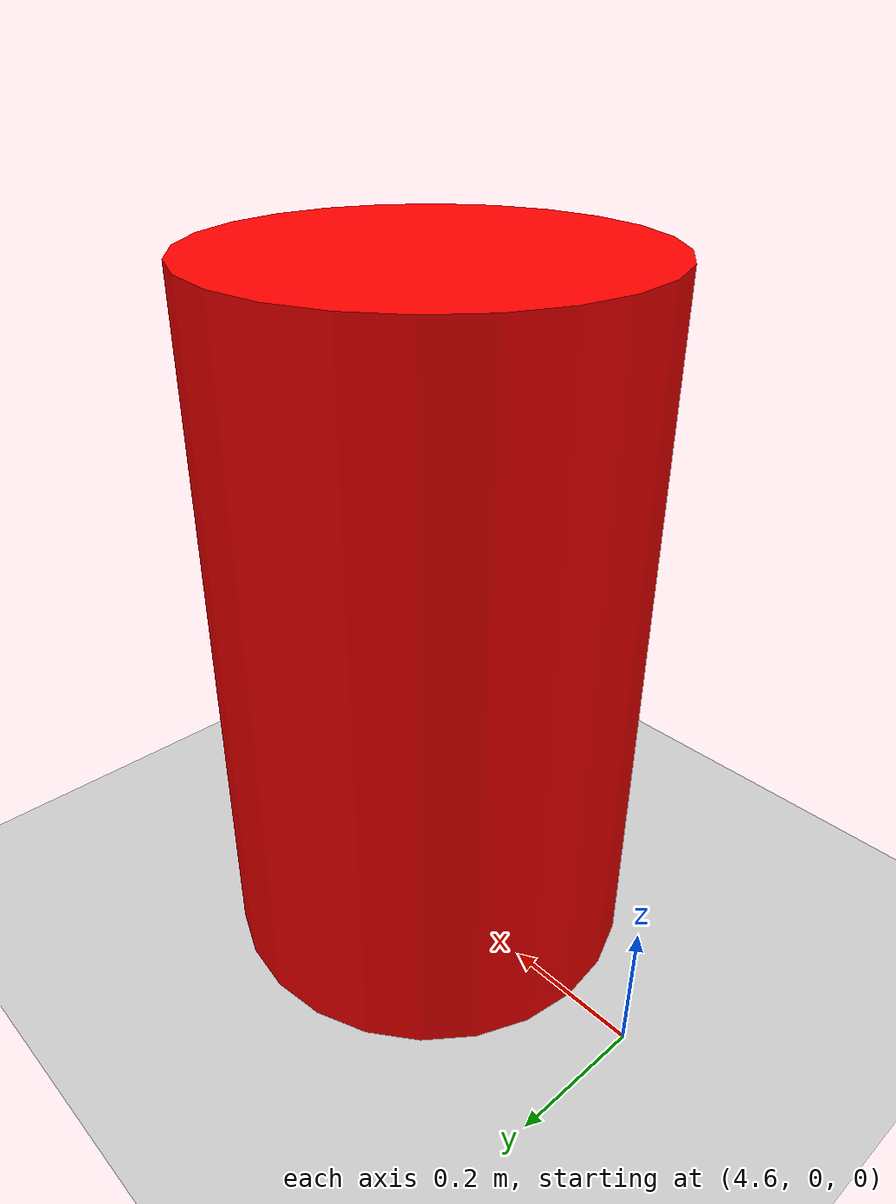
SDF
<?xml version="1.0" ?>
<sdf version="1.8">
  <world name="asar_world">
    <physics name="1ms" type="ignored">
      <max_step_size>0.001</max_step_size>
      <real_time_factor>1.0</real_time_factor>
    </physics>
    <gravity>0 0 -9.8</gravity>
    <magnetic_field>6e-06 2.3e-05 -4.2e-05</magnetic_field>
    <atmosphere type="adiabatic"/>

    <light type="directional" name="sun">
      <cast_shadows>true</cast_shadows>
      <pose>0 0 10 0 0 0</pose>
      <diffuse>0.8 0.8 0.8 1</diffuse>
      <specular>0.2 0.2 0.2 1</specular>
      <attenuation>
        <range>1000</range>
        <constant>0.9</constant>
        <linear>0.01</linear>
        <quadratic>0.001</quadratic>
      </attenuation>
      <direction>-0.5 0.1 -0.9</direction>
    </light>

    <spherical_coordinates>
      <surface_model>EARTH_WGS84</surface_model>
      <world_frame_orientation>ENU</world_frame_orientation>
      <latitude_deg>47.397971057728974</latitude_deg>
      <longitude_deg>8.546163739800146</longitude_deg>
      <elevation>0</elevation>
    </spherical_coordinates>

    <model name="ground_plane">
      <static>true</static>
      <link name="link">
        <collision name="collision">
          <geometry>
            <plane>
              <normal>0 0 1</normal>
              <size>100 100</size>
            </plane>
          </geometry>
        </collision>
        <visual name="visual">
          <geometry>
            <plane>
              <normal>0 0 1</normal>
              <size>100 100</size>
            </plane>
          </geometry>
          <material>
            <ambient>0.8 0.8 0.8 1</ambient>
            <diffuse>0.8 0.8 0.8 1</diffuse>
            <specular>0.8 0.8 0.8 1</specular>
          </material>
        </visual>
      </link>
    </model>

    <!-- Target Object: Person with red jacket (mocked as a red cylinder) -->
    <model name="red_target">
      <pose>5 0 0.5 0 0 0</pose>
      <static>true</static>
      <link name="link">
        <visual name="visual">
          <geometry>
            <cylinder>
              <radius>0.3</radius>
              <length>1.0</length>
            </cylinder>
          </geometry>
          <material>
            <ambient>1 0 0 1</ambient>
            <diffuse>1 0 0 1</diffuse>
            <specular>0.1 0.1 0.1 1</specular>
          </material>
        </visual>
      </link>
    </model>

  </world>
</sdf>
